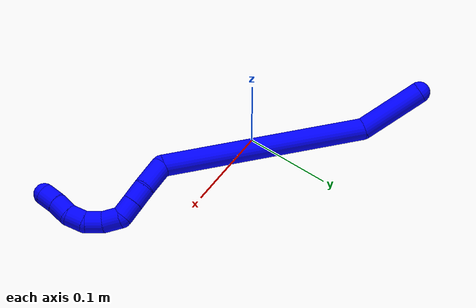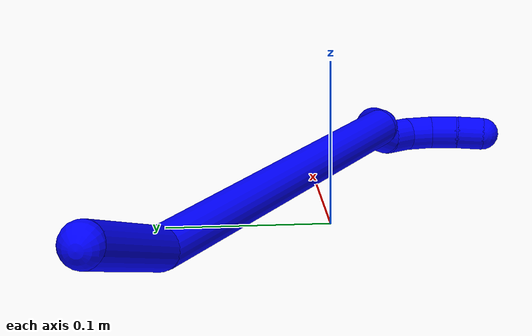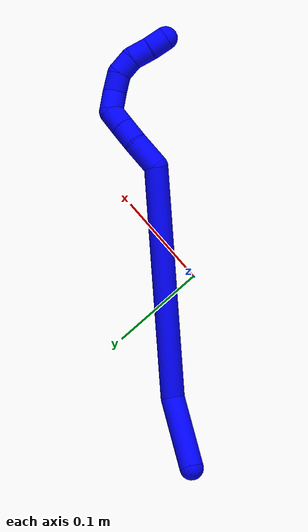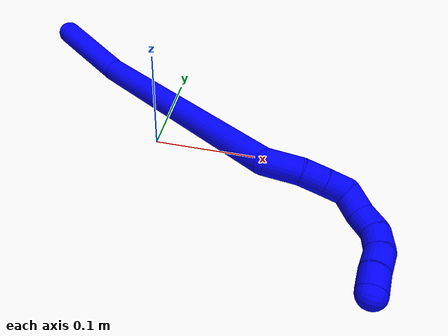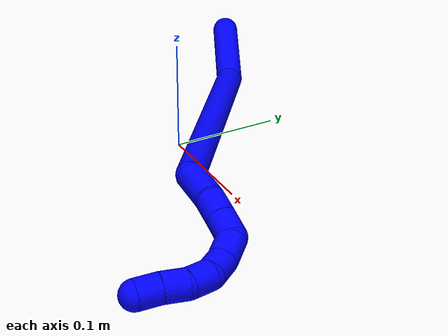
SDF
<sdf version="1.7">
 <world name="default">
  <plugin name="TubeGeneratorPlugin" filename="libtube_generator_plugin.so"/>
  <model name="photoneo_s_sensor">
   <static>1</static>
   <pose>0 0 2 1.57079 1.57079 3.14159</pose>
   <link name="link">
    <inertial><mass>0.1</mass></inertial>
    <sensor name="sensor" type="depth">
     <update_rate>30</update_rate>
     <camera>
      <horizontal_fov>1.22</horizontal_fov>
      <image><width>1920</width><height>1200</height><format>B8G8R8</format></image>
      <clip><near>0.1</near><far>4</far></clip>
      <depth_camera><output>points</output></depth_camera>
     </camera>
     <plugin name="camera_plugin" filename="libgazebo_ros_depth_camera.so">
      <baseline>0.2</baseline>
      <alwaysOn>1</alwaysOn>
      <updateRate>0.0</updateRate>
      <cameraName>camera_ir</cameraName>
      <imageTopicName>/camera/color/image_raw</imageTopicName>
      <cameraInfoTopicName>/camera/color/camera_info</cameraInfoTopicName>
      <depthImageTopicName>/camera/depth/image_raw</depthImageTopicName>
      <depthImageCameraInfoTopicName>/camera/depth/camera_info</depthImageCameraInfoTopicName>
      <pointCloudTopicName>/camera/depth/points</pointCloudTopicName>
      <frameName>fr_optical</frameName>
      <pointCloudCutoff>0.1</pointCloudCutoff>
      <pointCloudCutoffMax>2.0</pointCloudCutoffMax>
      <distortionK1>0</distortionK1>
      <distortionK2>0</distortionK2>
      <distortionK3>0</distortionK3>
      <distortionT1>0</distortionT1>
      <distortionT2>0</distortionT2>
      <CxPrime>0</CxPrime>
      <Cx>0</Cx>
      <Cy>0</Cy>
      <focalLength>0</focalLength>
      <hackBaseline>0</hackBaseline>
     </plugin>
    </sensor>
   </link>
  </model>
  <gravity>0 0 -9.8</gravity>
  <magnetic_field>6e-06 2.3e-05 -4.2e-05</magnetic_field>
  <atmosphere type="adiabatic"/>
  <physics name="default_physics" default="0" type="ode">
   <max_step_size>0.003</max_step_size>
   <real_time_factor>1</real_time_factor>
   <real_time_update_rate>1000</real_time_update_rate>
   <max_contacts>10000</max_contacts>
   <ode>
    <solver>
     <type>quick</type>
     <iters>100</iters>
     <sor>1.3</sor>
     <use_dynamic_moi_rescaling>0</use_dynamic_moi_rescaling>
    </solver>
    <constraints>
     <contact_max_correcting_vel>0</contact_max_correcting_vel>
     <contact_surface_layer>0.001</contact_surface_layer>
     <cfm>0</cfm>
     <erp>0.2</erp>
    </constraints>
   </ode>
  </physics>
  <scene><ambient>0.4 0.4 0.4 1</ambient><background>0.7 0.7 0.7 1</background><shadows>0</shadows></scene>
  <audio><device>default</device></audio>
  <spherical_coordinates>
   <surface_model>EARTH_WGS84</surface_model>
   <latitude_deg>0</latitude_deg>
   <longitude_deg>0</longitude_deg>
   <elevation>0</elevation>
   <heading_deg>0</heading_deg>
  </spherical_coordinates>
  <model name="bin">
   <static>1</static>
   <link name="bottom">
    <collision name="collision-bottom">
     <pose>0 0 -0.01 0 -0 0</pose>
     <geometry><box><size>0.8 0.6 0.02</size></box></geometry>
     <surface>
      <friction><ode><mu>100</mu><mu2>100</mu2></ode></friction>
      <contact><collide_bitmask>65535</collide_bitmask></contact>
     </surface>
    </collision>
   </link>
   <link name="west_wall">
    <collision name="collision-west_wall">
     <pose>-0.41 0 0.1 0 -0 0</pose>
     <geometry><box><size>0.02 0.6 0.2</size></box></geometry>
     <surface>
      <friction><ode><mu>100</mu><mu2>100</mu2></ode></friction>
      <contact><collide_bitmask>65535</collide_bitmask></contact>
     </surface>
    </collision>
   </link>
   <link name="east_wall">
    <collision name="collision-east_wall">
     <pose>0.41 0 0.1 0 -0 0</pose>
     <geometry><box><size>0.02 0.6 0.2</size></box></geometry>
     <surface>
      <friction><ode><mu>100</mu><mu2>100</mu2></ode></friction>
      <contact><collide_bitmask>65535</collide_bitmask></contact>
     </surface>
    </collision>
   </link>
   <link name="south_wall">
    <collision name="collision-south_wall">
     <pose>0 -0.31 0.1 0 -0 0</pose>
     <geometry><box><size>0.8 0.02 0.2</size></box></geometry>
     <surface>
      <friction><ode><mu>100</mu><mu2>100</mu2></ode></friction>
      <contact><collide_bitmask>65535</collide_bitmask></contact>
     </surface>
    </collision>
   </link>
   <link name="north_wall">
    <collision name="collision-north_wall">
     <pose>0 0.31 0.1 0 -0 0</pose>
     <geometry><box><size>0.8 0.02 0.2</size></box></geometry>
     <surface>
      <friction><ode><mu>100</mu><mu2>100</mu2></ode></friction>
      <contact><collide_bitmask>65535</collide_bitmask></contact>
     </surface>
    </collision>
   </link>
  </model>
  <model name="1">
   <static>0</static>
   <link name="1">
    <collision name="collision-cylinder-e_1_1_4">
     <pose>0.01472 0.001817 0.035829 -0.050669 0.389358 -0.009993</pose>
     <geometry><cylinder><radius>0.0125</radius><length>0.077555</length></cylinder></geometry>
     <surface>
      <friction><ode><mu>1.16</mu><mu2>1.16</mu2><slip1>0</slip1><slip2>0</slip2></ode></friction>
      <contact><ode><kp>1e+06</kp><kd>1</kd><max_vel>0</max_vel><min_depth>0.001</min_depth></ode></contact>
     </surface>
    </collision>
    <visual name="visual-cylinder-e_1_1_4">
     <pose>0.01472 0.001817 0.035829 -0.050669 0.389358 -0.009993</pose>
     <geometry><cylinder><radius>0.0125</radius><length>0.077555</length></cylinder></geometry>
     <material><ambient>0 0 1 1</ambient></material>
    </visual>
    <collision name="collision-cylinder-e_2_4_5">
     <pose>0.062827 -0.043542 0.178064 0.41732 0.279348 0.05952</pose>
     <geometry><cylinder><radius>0.0125</radius><length>0.242177</length></cylinder></geometry>
     <surface>
      <friction><ode><mu>1.16</mu><mu2>1.16</mu2><slip1>0</slip1><slip2>0</slip2></ode></friction>
      <contact><ode><kp>1e+06</kp><kd>1</kd><max_vel>0</max_vel><min_depth>0.001</min_depth></ode></contact>
     </surface>
    </collision>
    <visual name="visual-cylinder-e_2_4_5">
     <pose>0.062827 -0.043542 0.178064 0.41732 0.279348 0.05952</pose>
     <geometry><cylinder><radius>0.0125</radius><length>0.242177</length></cylinder></geometry>
     <material><ambient>0 0 1 1</ambient></material>
    </visual>
    <collision name="collision-cylinder-e_3_5_6">
     <pose>0.095261 -0.08773 0.300667 -0.182426 -0.057876 0.005295</pose>
     <geometry><cylinder><radius>0.0125</radius><length>0.032997</length></cylinder></geometry>
     <surface>
      <friction><ode><mu>1.16</mu><mu2>1.16</mu2><slip1>0</slip1><slip2>0</slip2></ode></friction>
      <contact><ode><kp>1e+06</kp><kd>1</kd><max_vel>0</max_vel><min_depth>0.001</min_depth></ode></contact>
     </surface>
    </collision>
    <visual name="visual-cylinder-e_3_5_6">
     <pose>0.095261 -0.08773 0.300667 -0.182426 -0.057876 0.005295</pose>
     <geometry><cylinder><radius>0.0125</radius><length>0.032997</length></cylinder></geometry>
     <material><ambient>0 0 1 1</ambient></material>
    </visual>
    <collision name="collision-cylinder-e_4_6_7">
     <pose>0.095172 -0.08159 0.327333 -0.29251 0.079046 -0.01165</pose>
     <geometry><cylinder><radius>0.0125</radius><length>0.021934</length></cylinder></geometry>
     <surface>
      <friction><ode><mu>1.16</mu><mu2>1.16</mu2><slip1>0</slip1><slip2>0</slip2></ode></friction>
      <contact><ode><kp>1e+06</kp><kd>1</kd><max_vel>0</max_vel><min_depth>0.001</min_depth></ode></contact>
     </surface>
    </collision>
    <visual name="visual-cylinder-e_4_6_7">
     <pose>0.095172 -0.08159 0.327333 -0.29251 0.079046 -0.01165</pose>
     <geometry><cylinder><radius>0.0125</radius><length>0.021934</length></cylinder></geometry>
     <material><ambient>0 0 1 1</ambient></material>
    </visual>
    <collision name="collision-cylinder-e_5_7_8">
     <pose>0.097076 -0.07536 0.347797 -0.298632 0.098864 -0.014884</pose>
     <geometry><cylinder><radius>0.0125</radius><length>0.021021</length></cylinder></geometry>
     <surface>
      <friction><ode><mu>1.16</mu><mu2>1.16</mu2><slip1>0</slip1><slip2>0</slip2></ode></friction>
      <contact><ode><kp>1e+06</kp><kd>1</kd><max_vel>0</max_vel><min_depth>0.001</min_depth></ode></contact>
     </surface>
    </collision>
    <visual name="visual-cylinder-e_5_7_8">
     <pose>0.097076 -0.07536 0.347797 -0.298632 0.098864 -0.014884</pose>
     <geometry><cylinder><radius>0.0125</radius><length>0.021021</length></cylinder></geometry>
     <material><ambient>0 0 1 1</ambient></material>
    </visual>
    <collision name="collision-cylinder-e_6_8_9">
     <pose>0.105698 -0.073654 0.365666 0.172392 0.759326 0.068932</pose>
     <geometry><cylinder><radius>0.0125</radius><length>0.022036</length></cylinder></geometry>
     <surface>
      <friction><ode><mu>1.16</mu><mu2>1.16</mu2><slip1>0</slip1><slip2>0</slip2></ode></friction>
      <contact><ode><kp>1e+06</kp><kd>1</kd><max_vel>0</max_vel><min_depth>0.001</min_depth></ode></contact>
     </surface>
    </collision>
    <visual name="visual-cylinder-e_6_8_9">
     <pose>0.105698 -0.073654 0.365666 0.172392 0.759326 0.068932</pose>
     <geometry><cylinder><radius>0.0125</radius><length>0.022036</length></cylinder></geometry>
     <material><ambient>0 0 1 1</ambient></material>
    </visual>
    <collision name="collision-cylinder-e_7_9_10">
     <pose>0.118882 -0.079799 0.380906 0.575053 0.567692 0.172111</pose>
     <geometry><cylinder><radius>0.0125</radius><length>0.020823</length></cylinder></geometry>
     <surface>
      <friction><ode><mu>1.16</mu><mu2>1.16</mu2><slip1>0</slip1><slip2>0</slip2></ode></friction>
      <contact><ode><kp>1e+06</kp><kd>1</kd><max_vel>0</max_vel><min_depth>0.001</min_depth></ode></contact>
     </surface>
    </collision>
    <visual name="visual-cylinder-e_7_9_10">
     <pose>0.118882 -0.079799 0.380906 0.575053 0.567692 0.172111</pose>
     <geometry><cylinder><radius>0.0125</radius><length>0.020823</length></cylinder></geometry>
     <material><ambient>0 0 1 1</ambient></material>
    </visual>
    <collision name="collision-cylinder-e_8_10_11">
     <pose>0.131871 -0.090842 0.391396 1.10858 0.81232 0.520383</pose>
     <geometry><cylinder><radius>0.0125</radius><length>0.020364</length></cylinder></geometry>
     <surface>
      <friction><ode><mu>1.16</mu><mu2>1.16</mu2><slip1>0</slip1><slip2>0</slip2></ode></friction>
      <contact><ode><kp>1e+06</kp><kd>1</kd><max_vel>0</max_vel><min_depth>0.001</min_depth></ode></contact>
     </surface>
    </collision>
    <visual name="visual-cylinder-e_8_10_11">
     <pose>0.131871 -0.090842 0.391396 1.10858 0.81232 0.520383</pose>
     <geometry><cylinder><radius>0.0125</radius><length>0.020364</length></cylinder></geometry>
     <material><ambient>0 0 1 1</ambient></material>
    </visual>
    <collision name="collision-cylinder-e_9_11_12">
     <pose>0.14728 -0.103788 0.39397 1.65277 0.874757 0.939378</pose>
     <geometry><cylinder><radius>0.0125</radius><length>0.020899</length></cylinder></geometry>
     <surface>
      <friction><ode><mu>1.16</mu><mu2>1.16</mu2><slip1>0</slip1><slip2>0</slip2></ode></friction>
      <contact><ode><kp>1e+06</kp><kd>1</kd><max_vel>0</max_vel><min_depth>0.001</min_depth></ode></contact>
     </surface>
    </collision>
    <visual name="visual-cylinder-e_9_11_12">
     <pose>0.14728 -0.103788 0.39397 1.65277 0.874757 0.939378</pose>
     <geometry><cylinder><radius>0.0125</radius><length>0.020899</length></cylinder></geometry>
     <material><ambient>0 0 1 1</ambient></material>
    </visual>
    <collision name="collision-cylinder-e_10_12_2">
     <pose>0.163477 -0.116375 0.393813 1.50459 0.944002 0.891392</pose>
     <geometry><cylinder><radius>0.0125</radius><length>0.020193</length></cylinder></geometry>
     <surface>
      <friction><ode><mu>1.16</mu><mu2>1.16</mu2><slip1>0</slip1><slip2>0</slip2></ode></friction>
      <contact><ode><kp>1e+06</kp><kd>1</kd><max_vel>0</max_vel><min_depth>0.001</min_depth></ode></contact>
     </surface>
    </collision>
    <visual name="visual-cylinder-e_10_12_2">
     <pose>0.163477 -0.116375 0.393813 1.50459 0.944002 0.891392</pose>
     <geometry><cylinder><radius>0.0125</radius><length>0.020193</length></cylinder></geometry>
     <material><ambient>0 0 1 1</ambient></material>
    </visual>
    <collision name="collision-sphere-2">
     <pose>0.171654 -0.122284 0.394205 0 -0 0</pose>
     <geometry><sphere><radius>0.0125</radius></sphere></geometry>
     <surface>
      <friction><ode><mu>1.16</mu><mu2>1.16</mu2><slip1>0</slip1><slip2>0</slip2></ode></friction>
      <contact><ode><kp>1e+06</kp><kd>1</kd><max_vel>0</max_vel><min_depth>0.001</min_depth></ode></contact>
     </surface>
    </collision>
    <visual name="visual-sphere-2">
     <pose>0.171654 -0.122284 0.394205 0 -0 0</pose>
     <geometry><sphere><radius>0.0125</radius></sphere></geometry>
     <material><ambient>0 0 1 1</ambient></material>
    </visual>
    <collision name="collision-sphere-12">
     <pose>0.155299 -0.110465 0.393421 0 -0 0</pose>
     <geometry><sphere><radius>0.0125</radius></sphere></geometry>
     <surface>
      <friction><ode><mu>1.16</mu><mu2>1.16</mu2><slip1>0</slip1><slip2>0</slip2></ode></friction>
      <contact><ode><kp>1e+06</kp><kd>1</kd><max_vel>0</max_vel><min_depth>0.001</min_depth></ode></contact>
     </surface>
    </collision>
    <visual name="visual-sphere-12">
     <pose>0.155299 -0.110465 0.393421 0 -0 0</pose>
     <geometry><sphere><radius>0.0125</radius></sphere></geometry>
     <material><ambient>0 0 1 1</ambient></material>
    </visual>
    <collision name="collision-sphere-11">
     <pose>0.139262 -0.09711 0.394519 0 -0 0</pose>
     <geometry><sphere><radius>0.0125</radius></sphere></geometry>
     <surface>
      <friction><ode><mu>1.16</mu><mu2>1.16</mu2><slip1>0</slip1><slip2>0</slip2></ode></friction>
      <contact><ode><kp>1e+06</kp><kd>1</kd><max_vel>0</max_vel><min_depth>0.001</min_depth></ode></contact>
     </surface>
    </collision>
    <visual name="visual-sphere-11">
     <pose>0.139262 -0.09711 0.394519 0 -0 0</pose>
     <geometry><sphere><radius>0.0125</radius></sphere></geometry>
     <material><ambient>0 0 1 1</ambient></material>
    </visual>
    <collision name="collision-sphere-10">
     <pose>0.12448 -0.084573 0.388273 0 -0 0</pose>
     <geometry><sphere><radius>0.0125</radius></sphere></geometry>
     <surface>
      <friction><ode><mu>1.16</mu><mu2>1.16</mu2><slip1>0</slip1><slip2>0</slip2></ode></friction>
      <contact><ode><kp>1e+06</kp><kd>1</kd><max_vel>0</max_vel><min_depth>0.001</min_depth></ode></contact>
     </surface>
    </collision>
    <visual name="visual-sphere-10">
     <pose>0.12448 -0.084573 0.388273 0 -0 0</pose>
     <geometry><sphere><radius>0.0125</radius></sphere></geometry>
     <material><ambient>0 0 1 1</ambient></material>
    </visual>
    <collision name="collision-sphere-9">
     <pose>0.113283 -0.075024 0.373539 0 -0 0</pose>
     <geometry><sphere><radius>0.0125</radius></sphere></geometry>
     <surface>
      <friction><ode><mu>1.16</mu><mu2>1.16</mu2><slip1>0</slip1><slip2>0</slip2></ode></friction>
      <contact><ode><kp>1e+06</kp><kd>1</kd><max_vel>0</max_vel><min_depth>0.001</min_depth></ode></contact>
     </surface>
    </collision>
    <visual name="visual-sphere-9">
     <pose>0.113283 -0.075024 0.373539 0 -0 0</pose>
     <geometry><sphere><radius>0.0125</radius></sphere></geometry>
     <material><ambient>0 0 1 1</ambient></material>
    </visual>
    <collision name="collision-sphere-4">
     <pose>0.029439 0.003634 0.071658 0 -0 0</pose>
     <geometry><sphere><radius>0.0125</radius></sphere></geometry>
     <surface>
      <friction><ode><mu>1.16</mu><mu2>1.16</mu2><slip1>0</slip1><slip2>0</slip2></ode></friction>
      <contact><ode><kp>1e+06</kp><kd>1</kd><max_vel>0</max_vel><min_depth>0.001</min_depth></ode></contact>
     </surface>
    </collision>
    <visual name="visual-sphere-4">
     <pose>0.029439 0.003634 0.071658 0 -0 0</pose>
     <geometry><sphere><radius>0.0125</radius></sphere></geometry>
     <material><ambient>0 0 1 1</ambient></material>
    </visual>
    <collision name="collision-sphere-1">
     <geometry><sphere><radius>0.0125</radius></sphere></geometry>
     <surface>
      <friction><ode><mu>1.16</mu><mu2>1.16</mu2><slip1>0</slip1><slip2>0</slip2></ode></friction>
      <contact><ode><kp>1e+06</kp><kd>1</kd><max_vel>0</max_vel><min_depth>0.001</min_depth></ode></contact>
     </surface>
    </collision>
    <visual name="visual-sphere-1">
     <geometry><sphere><radius>0.0125</radius></sphere></geometry>
     <material><ambient>0 0 1 1</ambient></material>
    </visual>
    <collision name="collision-sphere-8">
     <pose>0.098113 -0.072283 0.357793 0 -0 0</pose>
     <geometry><sphere><radius>0.0125</radius></sphere></geometry>
     <surface>
      <friction><ode><mu>1.16</mu><mu2>1.16</mu2><slip1>0</slip1><slip2>0</slip2></ode></friction>
      <contact><ode><kp>1e+06</kp><kd>1</kd><max_vel>0</max_vel><min_depth>0.001</min_depth></ode></contact>
     </surface>
    </collision>
    <visual name="visual-sphere-8">
     <pose>0.098113 -0.072283 0.357793 0 -0 0</pose>
     <geometry><sphere><radius>0.0125</radius></sphere></geometry>
     <material><ambient>0 0 1 1</ambient></material>
    </visual>
    <collision name="collision-sphere-5">
     <pose>0.096215 -0.090718 0.284469 0 -0 0</pose>
     <geometry><sphere><radius>0.0125</radius></sphere></geometry>
     <surface>
      <friction><ode><mu>1.16</mu><mu2>1.16</mu2><slip1>0</slip1><slip2>0</slip2></ode></friction>
      <contact><ode><kp>1e+06</kp><kd>1</kd><max_vel>0</max_vel><min_depth>0.001</min_depth></ode></contact>
     </surface>
    </collision>
    <visual name="visual-sphere-5">
     <pose>0.096215 -0.090718 0.284469 0 -0 0</pose>
     <geometry><sphere><radius>0.0125</radius></sphere></geometry>
     <material><ambient>0 0 1 1</ambient></material>
    </visual>
    <collision name="collision-sphere-6">
     <pose>0.094306 -0.084742 0.316865 0 -0 0</pose>
     <geometry><sphere><radius>0.0125</radius></sphere></geometry>
     <surface>
      <friction><ode><mu>1.16</mu><mu2>1.16</mu2><slip1>0</slip1><slip2>0</slip2></ode></friction>
      <contact><ode><kp>1e+06</kp><kd>1</kd><max_vel>0</max_vel><min_depth>0.001</min_depth></ode></contact>
     </surface>
    </collision>
    <visual name="visual-sphere-6">
     <pose>0.094306 -0.084742 0.316865 0 -0 0</pose>
     <geometry><sphere><radius>0.0125</radius></sphere></geometry>
     <material><ambient>0 0 1 1</ambient></material>
    </visual>
    <collision name="collision-sphere-7">
     <pose>0.096038 -0.078437 0.337801 0 -0 0</pose>
     <geometry><sphere><radius>0.0125</radius></sphere></geometry>
     <surface>
      <friction><ode><mu>1.16</mu><mu2>1.16</mu2><slip1>0</slip1><slip2>0</slip2></ode></friction>
      <contact><ode><kp>1e+06</kp><kd>1</kd><max_vel>0</max_vel><min_depth>0.001</min_depth></ode></contact>
     </surface>
    </collision>
    <visual name="visual-sphere-7">
     <pose>0.096038 -0.078437 0.337801 0 -0 0</pose>
     <geometry><sphere><radius>0.0125</radius></sphere></geometry>
     <material><ambient>0 0 1 1</ambient></material>
    </visual>
    <inertial>
     <pose>0.074995 -0.052653 0.220919 0 -0 0</pose>
     <mass>0.5</mass>
     <inertia>
      <ixx>0.001279</ixx>
      <ixy>0</ixy>
      <ixz>0</ixz>
      <iyy>0.001213</iyy>
      <iyz>0</iyz>
      <izz>0.000145</izz>
     </inertia>
    </inertial>
   </link>
   <pose>-0.147062 0.13193 0.034857 -1.60673 0.672231 -1.76112</pose>
  </model>
 </world>
</sdf>
